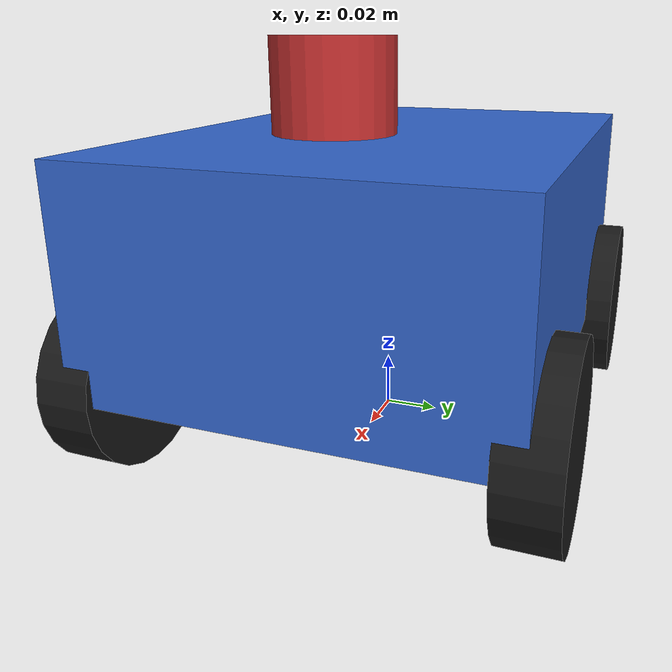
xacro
<?xml version="1.0"?>
<robot name="robot" xmlns:xacro="http://www.ros.org/wiki/xacro">

  <xacro:property name="base_length"  value="0.20"/>
  <xacro:property name="base_width"   value="0.15"/>
  <xacro:property name="base_height"  value="0.08"/>
  <xacro:property name="wheel_radius" value="0.033"/>
  <xacro:property name="wheel_width"  value="0.02"/>
  <xacro:property name="track_width"  value="0.15"/>
  <xacro:property name="wheel_xoff"   value="0.07"/>

  <!-- Macro roda: hanya definisi joint + link + friction dasar -->
  <xacro:macro name="wheel" params="name x y">
    <joint name="${name}_joint" type="continuous">
      <parent link="base_link"/>
      <child  link="${name}"/>
      <origin xyz="${x} ${y} ${-base_height/2}" rpy="-1.5708 0 0"/>
      <axis xyz="0 0 1"/>
      <dynamics damping="0.1" friction="0.1"/>
    </joint>

    <link name="${name}">
      <visual>
        <geometry>
          <cylinder radius="${wheel_radius}" length="${wheel_width}"/>
        </geometry>
        <material name="black">
          <color rgba="0.1 0.1 0.1 1.0"/>
        </material>
      </visual>
      <collision>
        <geometry>
          <cylinder radius="${wheel_radius}" length="${wheel_width}"/>
        </geometry>
      </collision>
      <inertial>
        <mass value="0.1"/>
        <inertia ixx="0.001" iyy="0.001" izz="0.001"
                 ixy="0"     ixz="0"     iyz="0"/>
      </inertial>
    </link>
  </xacro:macro>

  <!-- ── Base link ──────────────────────────────────────── -->
  <link name="base_footprint"/>

  <joint name="base_joint" type="fixed">
    <parent link="base_footprint"/>
    <child  link="base_link"/>
    <origin xyz="0 0 ${wheel_radius + base_height/2}" rpy="0 0 0"/>
  </joint>

  <link name="base_link">
    <visual>
      <geometry>
        <box size="${base_length} ${base_width} ${base_height}"/>
      </geometry>
      <material name="blue">
        <color rgba="0.2 0.4 0.8 1.0"/>
      </material>
    </visual>
    <collision>
      <geometry>
        <box size="${base_length} ${base_width} ${base_height}"/>
      </geometry>
    </collision>
    <inertial>
      <mass value="1.0"/>
      <inertia ixx="0.00347" iyy="0.00413" izz="0.00680"
               ixy="0"       ixz="0"       iyz="0"/>
    </inertial>
  </link>

  <!-- ── 4 Roda ─────────────────────────────────────────── -->
  <xacro:wheel name="front_left"  x=" ${wheel_xoff}" y=" ${track_width/2}"/>
  <xacro:wheel name="front_right" x=" ${wheel_xoff}" y="-${track_width/2}"/>
  <xacro:wheel name="rear_left"   x="-${wheel_xoff}" y=" ${track_width/2}"/>
  <xacro:wheel name="rear_right"  x="-${wheel_xoff}" y="-${track_width/2}"/>

  <!-- Friction roda depan: grip tinggi (penggerak) -->
  <gazebo reference="front_left">
    <mu1>1.0</mu1>
    <mu2>1.0</mu2>
    <kp>1000000.0</kp>
    <kd>1.0</kd>
  </gazebo>
  <gazebo reference="front_right">
    <mu1>1.0</mu1>
    <mu2>1.0</mu2>
    <kp>1000000.0</kp>
    <kd>1.0</kd>
  </gazebo>

  <!-- Friction roda belakang: rendah agar passive/free rolling -->
  <gazebo reference="rear_left">
    <mu1>0.01</mu1>
    <mu2>0.01</mu2>
    <kp>100000.0</kp>
    <kd>1.0</kd>
  </gazebo>
  <gazebo reference="rear_right">
    <mu1>0.01</mu1>
    <mu2>0.01</mu2>
    <kp>100000.0</kp>
    <kd>1.0</kd>
  </gazebo>

  <!-- ── Laser frame ────────────────────────────────────── -->
  <joint name="laser_joint" type="fixed">
    <parent link="base_link"/>
    <child  link="laser"/>
    <origin xyz="0.05 0 ${base_height/2 + 0.02}" rpy="0 0 0"/>
  </joint>

  <link name="laser">
    <visual>
      <geometry>
        <cylinder radius="0.02" length="0.03"/>
      </geometry>
      <material name="red">
        <color rgba="0.8 0.2 0.2 1.0"/>
      </material>
    </visual>
    <inertial>
      <mass value="0.05"/>
      <inertia ixx="0.0001" iyy="0.0001" izz="0.0001"
               ixy="0"      ixz="0"      iyz="0"/>
    </inertial>
  </link>

  <!-- ── Gazebo plugins ─────────────────────────────────── -->

  <gazebo>
    <plugin filename="libignition-gazebo-diff-drive-system.so"
            name="ignition::gazebo::systems::DiffDrive">
      <left_joint>front_left_joint</left_joint>
      <right_joint>front_right_joint</right_joint>
      <wheel_separation>${track_width}</wheel_separation>
      <wheel_radius>${wheel_radius}</wheel_radius>
      <odom_publish_frequency>20</odom_publish_frequency>
      <topic>/cmd_vel</topic>
      <odom_topic>/odom</odom_topic>
      <tf_topic>/tf</tf_topic>
      <frame_id>odom</frame_id>
      <child_frame_id>base_footprint</child_frame_id>
      <min_velocity>-1</min_velocity>
      <max_velocity>1</max_velocity>
      <min_acceleration>-3</min_acceleration>
      <max_acceleration>3</max_acceleration>
    </plugin>
  </gazebo>

  <gazebo>
    <plugin filename="libignition-gazebo-joint-state-publisher-system.so"
            name="ignition::gazebo::systems::JointStatePublisher">
      <topic>/joint_states</topic>
    </plugin>
  </gazebo>

  <gazebo reference="laser">
    <sensor name="laser_sensor" type="gpu_lidar">
      <ignition_frame_id>laser</ignition_frame_id>
      <always_on>true</always_on>
      <visualize>true</visualize>
      <update_rate>1.0</update_rate>
      <topic>scan</topic>
      <lidar>
        <scan>
          <horizontal>
            <samples>90</samples>
            <resolution>1</resolution>
            <min_angle>-1.5708</min_angle>
            <max_angle>1.5708</max_angle>
          </horizontal>
          <vertical>
            <samples>1</samples>
            <resolution>1</resolution>
            <min_angle>0</min_angle>
            <max_angle>0</max_angle>
          </vertical>
        </scan>
        <range>
          <min>0.10</min>
          <max>12.0</max>
          <resolution>0.01</resolution>
        </range>
        <noise>
          <type>gaussian</type>
          <mean>0.0</mean>
          <stddev>0.01</stddev>
        </noise>
      </lidar>
    </sensor>
  </gazebo>

</robot>
